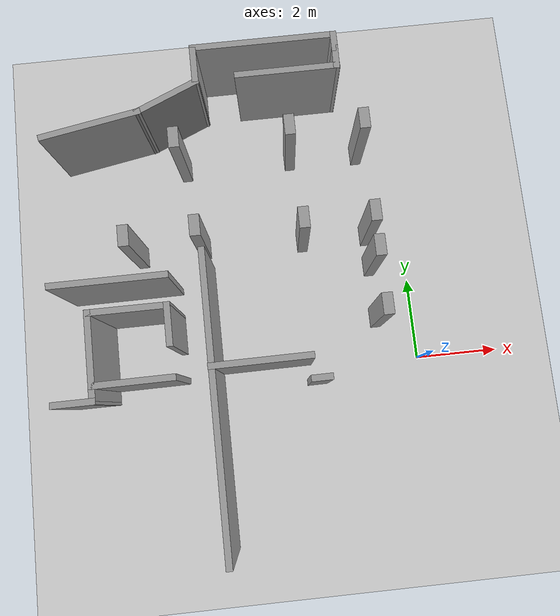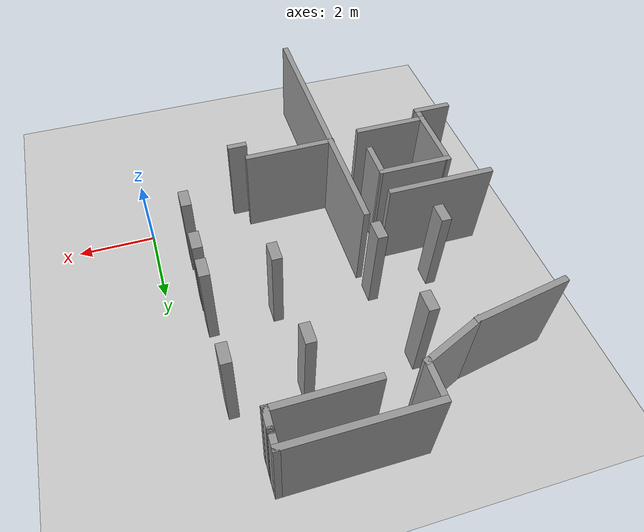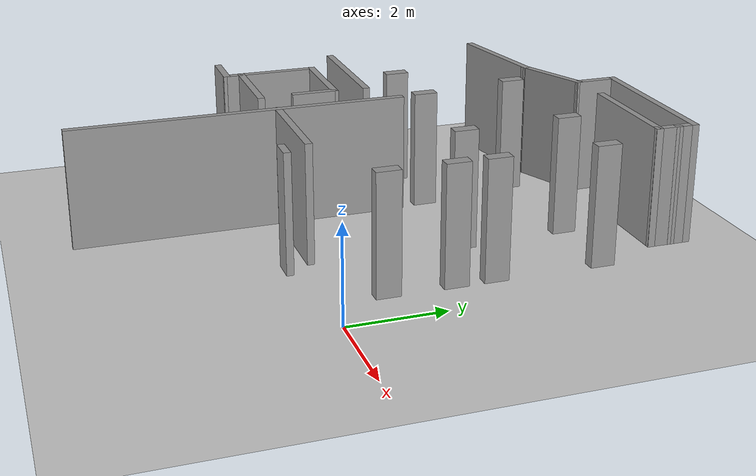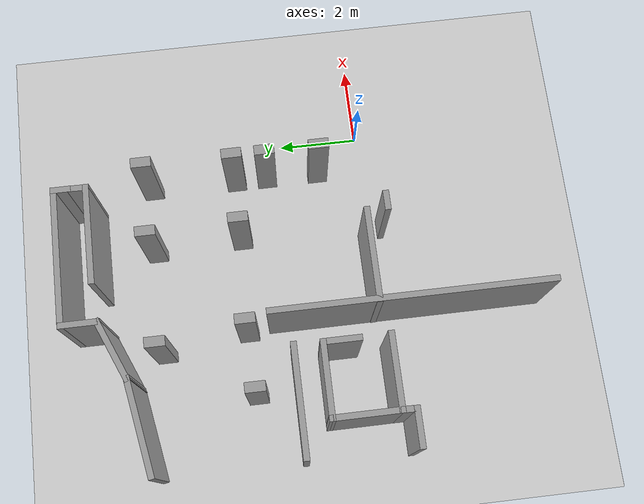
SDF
<sdf version="1.7">
 <world name="default">
  <model name="ground_plane">
   <static>1</static>
   <link name="link">
    <collision name="collision">
     <geometry><plane><normal>0 0 1</normal><size>100 100</size></plane></geometry>
     <surface><friction><ode><mu>100</mu><mu2>50</mu2></ode></friction></surface>
    </collision>
    <visual name="visual">
     <cast_shadows>0</cast_shadows>
     <geometry><plane><normal>0 0 1</normal><size>100 100</size></plane></geometry>
     <material>
      <script><uri>file://media/materials/scripts/gazebo.material</uri><name>Gazebo/Grey</name></script>
     </material>
    </visual>
   </link>
  </model>
  <model name="Level1">
   <link name="Wall_147">
    <pose>-2.69684 5.52459 0 0 -0 1.5708</pose>
    <visual name="Wall_147_Visual">
     <pose>0 0 1.25 0 -0 0</pose>
     <geometry><box><size>0.5 0.25 2.5</size></box></geometry>
     <material>
      <script><uri>file://media/materials/scripts/gazebo.material</uri><name>Gazebo/Grey</name></script>
      <ambient>1 1 1 1</ambient>
      <shader type="pixel"/>
     </material>
     <meta><layer>0</layer></meta>
    </visual>
    <collision name="Wall_147_Collision">
     <pose>0 0 1.25 0 -0 0</pose>
     <geometry><box><size>0.5 0.25 2.5</size></box></geometry>
     <surface>
      <friction>
       <ode><mu>1</mu><mu2>1</mu2><fdir1>0 0 0</fdir1><slip1>0</slip1><slip2>0</slip2></ode>
       <torsional>
        <coefficient>1</coefficient>
        <patch_radius>0</patch_radius>
        <surface_radius>0</surface_radius>
        <use_patch_radius>1</use_patch_radius>
        <ode><slip>0</slip></ode>
       </torsional>
      </friction>
      <bounce><restitution_coefficient>0</restitution_coefficient><threshold>1e+06</threshold></bounce>
      <contact>
       <collide_without_contact>0</collide_without_contact>
       <collide_without_contact_bitmask>1</collide_without_contact_bitmask>
       <collide_bitmask>1</collide_bitmask>
       <ode>
        <soft_cfm>0</soft_cfm>
        <soft_erp>0.2</soft_erp>
        <kp>1e+13</kp>
        <kd>1</kd>
        <max_vel>0.01</max_vel>
        <min_depth>0</min_depth>
       </ode>
       <bullet>
        <split_impulse>1</split_impulse>
        <split_impulse_penetration_threshold>-0.01</split_impulse_penetration_threshold>
        <soft_cfm>0</soft_cfm>
        <soft_erp>0.2</soft_erp>
        <kp>1e+13</kp>
        <kd>1</kd>
       </bullet>
      </contact>
     </surface>
    </collision>
   </link>
   <link name="Wall_147_clone">
    <pose>-0.945685 5.50103 0 0 -0 1.5708</pose>
    <visual name="Wall_147_Visual">
     <pose>0 0 1.25 0 -0 0</pose>
     <geometry><box><size>0.5 0.25 2.5</size></box></geometry>
     <material>
      <script><uri>file://media/materials/scripts/gazebo.material</uri><name>Gazebo/Grey</name></script>
      <ambient>1 1 1 1</ambient>
      <shader type="pixel"/>
     </material>
     <meta><layer>0</layer></meta>
    </visual>
    <collision name="Wall_147_Collision">
     <pose>0 0 1.25 0 -0 0</pose>
     <geometry><box><size>0.5 0.25 2.5</size></box></geometry>
     <surface>
      <friction>
       <ode><mu>1</mu><mu2>1</mu2><fdir1>0 0 0</fdir1><slip1>0</slip1><slip2>0</slip2></ode>
       <torsional>
        <coefficient>1</coefficient>
        <patch_radius>0</patch_radius>
        <surface_radius>0</surface_radius>
        <use_patch_radius>1</use_patch_radius>
        <ode><slip>0</slip></ode>
       </torsional>
      </friction>
      <bounce><restitution_coefficient>0</restitution_coefficient><threshold>1e+06</threshold></bounce>
      <contact>
       <collide_without_contact>0</collide_without_contact>
       <collide_without_contact_bitmask>1</collide_without_contact_bitmask>
       <collide_bitmask>1</collide_bitmask>
       <ode>
        <soft_cfm>0</soft_cfm>
        <soft_erp>0.2</soft_erp>
        <kp>1e+13</kp>
        <kd>1</kd>
        <max_vel>0.01</max_vel>
        <min_depth>0</min_depth>
       </ode>
       <bullet>
        <split_impulse>1</split_impulse>
        <split_impulse_penetration_threshold>-0.01</split_impulse_penetration_threshold>
        <soft_cfm>0</soft_cfm>
        <soft_erp>0.2</soft_erp>
        <kp>1e+13</kp>
        <kd>1</kd>
       </bullet>
      </contact>
     </surface>
    </collision>
   </link>
   <link name="Wall_147_clone_clone_1">
    <pose>-2.60288 3.28042 0 0 -0 1.5708</pose>
    <visual name="Wall_147_Visual">
     <pose>0 0 1.25 0 -0 0</pose>
     <geometry><box><size>0.5 0.25 2.5</size></box></geometry>
     <material>
      <script><uri>file://media/materials/scripts/gazebo.material</uri><name>Gazebo/Grey</name></script>
      <ambient>1 1 1 1</ambient>
      <shader type="pixel"/>
     </material>
     <meta><layer>0</layer></meta>
    </visual>
    <collision name="Wall_147_Collision">
     <pose>0 0 1.25 0 -0 0</pose>
     <geometry><box><size>0.5 0.25 2.5</size></box></geometry>
     <surface>
      <friction>
       <ode><mu>1</mu><mu2>1</mu2><fdir1>0 0 0</fdir1><slip1>0</slip1><slip2>0</slip2></ode>
       <torsional>
        <coefficient>1</coefficient>
        <patch_radius>0</patch_radius>
        <surface_radius>0</surface_radius>
        <use_patch_radius>1</use_patch_radius>
        <ode><slip>0</slip></ode>
       </torsional>
      </friction>
      <bounce><restitution_coefficient>0</restitution_coefficient><threshold>1e+06</threshold></bounce>
      <contact>
       <collide_without_contact>0</collide_without_contact>
       <collide_without_contact_bitmask>1</collide_without_contact_bitmask>
       <collide_bitmask>1</collide_bitmask>
       <ode>
        <soft_cfm>0</soft_cfm>
        <soft_erp>0.2</soft_erp>
        <kp>1e+13</kp>
        <kd>1</kd>
        <max_vel>0.01</max_vel>
        <min_depth>0</min_depth>
       </ode>
       <bullet>
        <split_impulse>1</split_impulse>
        <split_impulse_penetration_threshold>-0.01</split_impulse_penetration_threshold>
        <soft_cfm>0</soft_cfm>
        <soft_erp>0.2</soft_erp>
        <kp>1e+13</kp>
        <kd>1</kd>
       </bullet>
      </contact>
     </surface>
    </collision>
   </link>
   <link name="Wall_147_clone_clone_12">
    <pose>-5.406 5.49643 0 0 -0 1.5708</pose>
    <visual name="Wall_147_Visual">
     <pose>0 0 1.25 0 -0 0</pose>
     <geometry><box><size>0.5 0.25 2.5</size></box></geometry>
     <material>
      <script><uri>file://media/materials/scripts/gazebo.material</uri><name>Gazebo/Grey</name></script>
      <ambient>1 1 1 1</ambient>
      <shader type="pixel"/>
     </material>
     <meta><layer>0</layer></meta>
    </visual>
    <collision name="Wall_147_Collision">
     <pose>0 0 1.25 0 -0 0</pose>
     <geometry><box><size>0.5 0.25 2.5</size></box></geometry>
     <surface>
      <friction>
       <ode><mu>1</mu><mu2>1</mu2><fdir1>0 0 0</fdir1><slip1>0</slip1><slip2>0</slip2></ode>
       <torsional>
        <coefficient>1</coefficient>
        <patch_radius>0</patch_radius>
        <surface_radius>0</surface_radius>
        <use_patch_radius>1</use_patch_radius>
        <ode><slip>0</slip></ode>
       </torsional>
      </friction>
      <bounce><restitution_coefficient>0</restitution_coefficient><threshold>1e+06</threshold></bounce>
      <contact>
       <collide_without_contact>0</collide_without_contact>
       <collide_without_contact_bitmask>1</collide_without_contact_bitmask>
       <collide_bitmask>1</collide_bitmask>
       <ode>
        <soft_cfm>0</soft_cfm>
        <soft_erp>0.2</soft_erp>
        <kp>1e+13</kp>
        <kd>1</kd>
        <max_vel>0.01</max_vel>
        <min_depth>0</min_depth>
       </ode>
       <bullet>
        <split_impulse>1</split_impulse>
        <split_impulse_penetration_threshold>-0.01</split_impulse_penetration_threshold>
        <soft_cfm>0</soft_cfm>
        <soft_erp>0.2</soft_erp>
        <kp>1e+13</kp>
        <kd>1</kd>
       </bullet>
      </contact>
     </surface>
    </collision>
   </link>
   <link name="Wall_147_clone_clone_13">
    <pose>-5.09429 3.3571 0 0 -0 1.5708</pose>
    <visual name="Wall_147_Visual">
     <pose>0 0 1.25 0 -0 0</pose>
     <geometry><box><size>0.5 0.25 2.5</size></box></geometry>
     <material>
      <script><uri>file://media/materials/scripts/gazebo.material</uri><name>Gazebo/Grey</name></script>
      <ambient>1 1 1 1</ambient>
      <shader type="pixel"/>
     </material>
     <meta><layer>0</layer></meta>
    </visual>
    <collision name="Wall_147_Collision">
     <pose>0 0 1.25 0 -0 0</pose>
     <geometry><box><size>0.5 0.25 2.5</size></box></geometry>
     <surface>
      <friction>
       <ode><mu>1</mu><mu2>1</mu2><fdir1>0 0 0</fdir1><slip1>0</slip1><slip2>0</slip2></ode>
       <torsional>
        <coefficient>1</coefficient>
        <patch_radius>0</patch_radius>
        <surface_radius>0</surface_radius>
        <use_patch_radius>1</use_patch_radius>
        <ode><slip>0</slip></ode>
       </torsional>
      </friction>
      <bounce><restitution_coefficient>0</restitution_coefficient><threshold>1e+06</threshold></bounce>
      <contact>
       <collide_without_contact>0</collide_without_contact>
       <collide_without_contact_bitmask>1</collide_without_contact_bitmask>
       <collide_bitmask>1</collide_bitmask>
       <ode>
        <soft_cfm>0</soft_cfm>
        <soft_erp>0.2</soft_erp>
        <kp>1e+13</kp>
        <kd>1</kd>
        <max_vel>0.01</max_vel>
        <min_depth>0</min_depth>
       </ode>
       <bullet>
        <split_impulse>1</split_impulse>
        <split_impulse_penetration_threshold>-0.01</split_impulse_penetration_threshold>
        <soft_cfm>0</soft_cfm>
        <soft_erp>0.2</soft_erp>
        <kp>1e+13</kp>
        <kd>1</kd>
       </bullet>
      </contact>
     </surface>
    </collision>
   </link>
   <link name="Wall_147_clone_clone_14">
    <pose>-6.71885 3.28042 0 0 -0 1.5708</pose>
    <visual name="Wall_147_Visual">
     <pose>0 0 1.25 0 -0 0</pose>
     <geometry><box><size>0.5 0.25 2.5</size></box></geometry>
     <material>
      <script><uri>file://media/materials/scripts/gazebo.material</uri><name>Gazebo/Grey</name></script>
      <ambient>1 1 1 1</ambient>
      <shader type="pixel"/>
     </material>
     <meta><layer>0</layer></meta>
    </visual>
    <collision name="Wall_147_Collision">
     <pose>0 0 1.25 0 -0 0</pose>
     <geometry><box><size>0.5 0.25 2.5</size></box></geometry>
     <surface>
      <friction>
       <ode><mu>1</mu><mu2>1</mu2><fdir1>0 0 0</fdir1><slip1>0</slip1><slip2>0</slip2></ode>
       <torsional>
        <coefficient>1</coefficient>
        <patch_radius>0</patch_radius>
        <surface_radius>0</surface_radius>
        <use_patch_radius>1</use_patch_radius>
        <ode><slip>0</slip></ode>
       </torsional>
      </friction>
      <bounce><restitution_coefficient>0</restitution_coefficient><threshold>1e+06</threshold></bounce>
      <contact>
       <collide_without_contact>0</collide_without_contact>
       <collide_without_contact_bitmask>1</collide_without_contact_bitmask>
       <collide_bitmask>1</collide_bitmask>
       <ode>
        <soft_cfm>0</soft_cfm>
        <soft_erp>0.2</soft_erp>
        <kp>1e+13</kp>
        <kd>1</kd>
        <max_vel>0.01</max_vel>
        <min_depth>0</min_depth>
       </ode>
       <bullet>
        <split_impulse>1</split_impulse>
        <split_impulse_penetration_threshold>-0.01</split_impulse_penetration_threshold>
        <soft_cfm>0</soft_cfm>
        <soft_erp>0.2</soft_erp>
        <kp>1e+13</kp>
        <kd>1</kd>
       </bullet>
      </contact>
     </surface>
    </collision>
   </link>
   <link name="Wall_147_clone_clone_2">
    <pose>-0.958529 3.28042 0 0 -0 1.5708</pose>
    <visual name="Wall_147_Visual">
     <pose>0 0 1.25 0 -0 0</pose>
     <geometry><box><size>0.5 0.25 2.5</size></box></geometry>
     <material>
      <script><uri>file://media/materials/scripts/gazebo.material</uri><name>Gazebo/Grey</name></script>
      <ambient>1 1 1 1</ambient>
      <shader type="pixel"/>
     </material>
     <meta><layer>0</layer></meta>
    </visual>
    <collision name="Wall_147_Collision">
     <pose>0 0 1.25 0 -0 0</pose>
     <geometry><box><size>0.5 0.25 2.5</size></box></geometry>
     <surface>
      <friction>
       <ode><mu>1</mu><mu2>1</mu2><fdir1>0 0 0</fdir1><slip1>0</slip1><slip2>0</slip2></ode>
       <torsional>
        <coefficient>1</coefficient>
        <patch_radius>0</patch_radius>
        <surface_radius>0</surface_radius>
        <use_patch_radius>1</use_patch_radius>
        <ode><slip>0</slip></ode>
       </torsional>
      </friction>
      <bounce><restitution_coefficient>0</restitution_coefficient><threshold>1e+06</threshold></bounce>
      <contact>
       <collide_without_contact>0</collide_without_contact>
       <collide_without_contact_bitmask>1</collide_without_contact_bitmask>
       <collide_bitmask>1</collide_bitmask>
       <ode>
        <soft_cfm>0</soft_cfm>
        <soft_erp>0.2</soft_erp>
        <kp>1e+13</kp>
        <kd>1</kd>
        <max_vel>0.01</max_vel>
        <min_depth>0</min_depth>
       </ode>
       <bullet>
        <split_impulse>1</split_impulse>
        <split_impulse_penetration_threshold>-0.01</split_impulse_penetration_threshold>
        <soft_cfm>0</soft_cfm>
        <soft_erp>0.2</soft_erp>
        <kp>1e+13</kp>
        <kd>1</kd>
       </bullet>
      </contact>
     </surface>
    </collision>
   </link>
   <link name="Wall_147_clone_clone_5">
    <pose>-0.958529 2.4674 0 0 -0 1.5708</pose>
    <visual name="Wall_147_Visual">
     <pose>0 0 1.25 0 -0 0</pose>
     <geometry><box><size>0.5 0.25 2.5</size></box></geometry>
     <material>
      <script><uri>file://media/materials/scripts/gazebo.material</uri><name>Gazebo/Grey</name></script>
      <ambient>1 1 1 1</ambient>
      <shader type="pixel"/>
     </material>
     <meta><layer>0</layer></meta>
    </visual>
    <collision name="Wall_147_Collision">
     <pose>0 0 1.25 0 -0 0</pose>
     <geometry><box><size>0.5 0.25 2.5</size></box></geometry>
     <surface>
      <friction>
       <ode><mu>1</mu><mu2>1</mu2><fdir1>0 0 0</fdir1><slip1>0</slip1><slip2>0</slip2></ode>
       <torsional>
        <coefficient>1</coefficient>
        <patch_radius>0</patch_radius>
        <surface_radius>0</surface_radius>
        <use_patch_radius>1</use_patch_radius>
        <ode><slip>0</slip></ode>
       </torsional>
      </friction>
      <bounce><restitution_coefficient>0</restitution_coefficient><threshold>1e+06</threshold></bounce>
      <contact>
       <collide_without_contact>0</collide_without_contact>
       <collide_without_contact_bitmask>1</collide_without_contact_bitmask>
       <collide_bitmask>1</collide_bitmask>
       <ode>
        <soft_cfm>0</soft_cfm>
        <soft_erp>0.2</soft_erp>
        <kp>1e+13</kp>
        <kd>1</kd>
        <max_vel>0.01</max_vel>
        <min_depth>0</min_depth>
       </ode>
       <bullet>
        <split_impulse>1</split_impulse>
        <split_impulse_penetration_threshold>-0.01</split_impulse_penetration_threshold>
        <soft_cfm>0</soft_cfm>
        <soft_erp>0.2</soft_erp>
        <kp>1e+13</kp>
        <kd>1</kd>
       </bullet>
      </contact>
     </surface>
    </collision>
   </link>
   <link name="Wall_147_clone_clone_8">
    <pose>-0.958529 1.12043 0 0 -0 1.5708</pose>
    <visual name="Wall_147_Visual">
     <pose>0 0 1.25 0 -0 0</pose>
     <geometry><box><size>0.5 0.25 2.5</size></box></geometry>
     <material>
      <script><uri>file://media/materials/scripts/gazebo.material</uri><name>Gazebo/Grey</name></script>
      <ambient>1 1 1 1</ambient>
      <shader type="pixel"/>
     </material>
     <meta><layer>0</layer></meta>
    </visual>
    <collision name="Wall_147_Collision">
     <pose>0 0 1.25 0 -0 0</pose>
     <geometry><box><size>0.5 0.25 2.5</size></box></geometry>
     <surface>
      <friction>
       <ode><mu>1</mu><mu2>1</mu2><fdir1>0 0 0</fdir1><slip1>0</slip1><slip2>0</slip2></ode>
       <torsional>
        <coefficient>1</coefficient>
        <patch_radius>0</patch_radius>
        <surface_radius>0</surface_radius>
        <use_patch_radius>1</use_patch_radius>
        <ode><slip>0</slip></ode>
       </torsional>
      </friction>
      <bounce><restitution_coefficient>0</restitution_coefficient><threshold>1e+06</threshold></bounce>
      <contact>
       <collide_without_contact>0</collide_without_contact>
       <collide_without_contact_bitmask>1</collide_without_contact_bitmask>
       <collide_bitmask>1</collide_bitmask>
       <ode>
        <soft_cfm>0</soft_cfm>
        <soft_erp>0.2</soft_erp>
        <kp>1e+13</kp>
        <kd>1</kd>
        <max_vel>0.01</max_vel>
        <min_depth>0</min_depth>
       </ode>
       <bullet>
        <split_impulse>1</split_impulse>
        <split_impulse_penetration_threshold>-0.01</split_impulse_penetration_threshold>
        <soft_cfm>0</soft_cfm>
        <soft_erp>0.2</soft_erp>
        <kp>1e+13</kp>
        <kd>1</kd>
       </bullet>
      </contact>
     </surface>
    </collision>
   </link>
   <link name="Wall_16">
    <pose>-1.43052 7.47884 0 0 -0 1.5708</pose>
    <visual name="Wall_16_Visual">
     <pose>0 0 1.25 0 -0 0</pose>
     <geometry><box><size>0.5 0.15 2.5</size></box></geometry>
     <material>
      <script><uri>file://media/materials/scripts/gazebo.material</uri><name>Gazebo/Grey</name></script>
      <ambient>1 1 1 1</ambient>
      <shader type="pixel"/>
     </material>
     <meta><layer>0</layer></meta>
    </visual>
    <collision name="Wall_16_Collision">
     <pose>0 0 1.25 0 -0 0</pose>
     <geometry><box><size>0.5 0.15 2.5</size></box></geometry>
     <surface>
      <friction>
       <ode><mu>1</mu><mu2>1</mu2><fdir1>0 0 0</fdir1><slip1>0</slip1><slip2>0</slip2></ode>
       <torsional>
        <coefficient>1</coefficient>
        <patch_radius>0</patch_radius>
        <surface_radius>0</surface_radius>
        <use_patch_radius>1</use_patch_radius>
        <ode><slip>0</slip></ode>
       </torsional>
      </friction>
      <bounce><restitution_coefficient>0</restitution_coefficient><threshold>1e+06</threshold></bounce>
      <contact>
       <collide_without_contact>0</collide_without_contact>
       <collide_without_contact_bitmask>1</collide_without_contact_bitmask>
       <collide_bitmask>1</collide_bitmask>
       <ode>
        <soft_cfm>0</soft_cfm>
        <soft_erp>0.2</soft_erp>
        <kp>1e+13</kp>
        <kd>1</kd>
        <max_vel>0.01</max_vel>
        <min_depth>0</min_depth>
       </ode>
       <bullet>
        <split_impulse>1</split_impulse>
        <split_impulse_penetration_threshold>-0.01</split_impulse_penetration_threshold>
        <soft_cfm>0</soft_cfm>
        <soft_erp>0.2</soft_erp>
        <kp>1e+13</kp>
        <kd>1</kd>
       </bullet>
      </contact>
     </surface>
    </collision>
   </link>
   <link name="Wall_18">
    <pose>-3.10552 7.65384 0 0 -0 3.14159</pose>
    <visual name="Wall_18_Visual">
     <pose>0 0 1.25 0 -0 0</pose>
     <geometry><box><size>3.5 0.15 2.5</size></box></geometry>
     <material>
      <script><uri>file://media/materials/scripts/gazebo.material</uri><name>Gazebo/Grey</name></script>
      <ambient>1 1 1 1</ambient>
      <shader type="pixel"/>
     </material>
     <meta><layer>0</layer></meta>
    </visual>
    <collision name="Wall_18_Collision">
     <pose>0 0 1.25 0 -0 0</pose>
     <geometry><box><size>3.5 0.15 2.5</size></box></geometry>
     <surface>
      <friction>
       <ode><mu>1</mu><mu2>1</mu2><fdir1>0 0 0</fdir1><slip1>0</slip1><slip2>0</slip2></ode>
       <torsional>
        <coefficient>1</coefficient>
        <patch_radius>0</patch_radius>
        <surface_radius>0</surface_radius>
        <use_patch_radius>1</use_patch_radius>
        <ode><slip>0</slip></ode>
       </torsional>
      </friction>
      <bounce><restitution_coefficient>0</restitution_coefficient><threshold>1e+06</threshold></bounce>
      <contact>
       <collide_without_contact>0</collide_without_contact>
       <collide_without_contact_bitmask>1</collide_without_contact_bitmask>
       <collide_bitmask>1</collide_bitmask>
       <ode>
        <soft_cfm>0</soft_cfm>
        <soft_erp>0.2</soft_erp>
        <kp>1e+13</kp>
        <kd>1</kd>
        <max_vel>0.01</max_vel>
        <min_depth>0</min_depth>
       </ode>
       <bullet>
        <split_impulse>1</split_impulse>
        <split_impulse_penetration_threshold>-0.01</split_impulse_penetration_threshold>
        <soft_cfm>0</soft_cfm>
        <soft_erp>0.2</soft_erp>
        <kp>1e+13</kp>
        <kd>1</kd>
       </bullet>
      </contact>
     </surface>
    </collision>
   </link>
   <link name="Wall_19">
    <pose>-4.78052 7.22884 0 0 0 -1.5708</pose>
    <visual name="Wall_19_Visual">
     <pose>0 0 1.25 0 -0 0</pose>
     <geometry><box><size>1 0.15 2.5</size></box></geometry>
     <material>
      <script><uri>file://media/materials/scripts/gazebo.material</uri><name>Gazebo/Grey</name></script>
      <ambient>1 1 1 1</ambient>
      <shader type="pixel"/>
     </material>
     <meta><layer>0</layer></meta>
    </visual>
    <collision name="Wall_19_Collision">
     <pose>0 0 1.25 0 -0 0</pose>
     <geometry><box><size>1 0.15 2.5</size></box></geometry>
     <surface>
      <friction>
       <ode><mu>1</mu><mu2>1</mu2><fdir1>0 0 0</fdir1><slip1>0</slip1><slip2>0</slip2></ode>
       <torsional>
        <coefficient>1</coefficient>
        <patch_radius>0</patch_radius>
        <surface_radius>0</surface_radius>
        <use_patch_radius>1</use_patch_radius>
        <ode><slip>0</slip></ode>
       </torsional>
      </friction>
      <bounce><restitution_coefficient>0</restitution_coefficient><threshold>1e+06</threshold></bounce>
      <contact>
       <collide_without_contact>0</collide_without_contact>
       <collide_without_contact_bitmask>1</collide_without_contact_bitmask>
       <collide_bitmask>1</collide_bitmask>
       <ode>
        <soft_cfm>0</soft_cfm>
        <soft_erp>0.2</soft_erp>
        <kp>1e+13</kp>
        <kd>1</kd>
        <max_vel>0.01</max_vel>
        <min_depth>0</min_depth>
       </ode>
       <bullet>
        <split_impulse>1</split_impulse>
        <split_impulse_penetration_threshold>-0.01</split_impulse_penetration_threshold>
        <soft_cfm>0</soft_cfm>
        <soft_erp>0.2</soft_erp>
        <kp>1e+13</kp>
        <kd>1</kd>
       </bullet>
      </contact>
     </surface>
    </collision>
   </link>
   <link name="Wall_22">
    <pose>-5.48364 6.50298 0 0 0 -2.73728</pose>
    <visual name="Wall_22_Visual">
     <pose>0 0 1.25 0 -0 0</pose>
     <geometry><box><size>1.67957 0.15 2.5</size></box></geometry>
     <material>
      <script><uri>file://media/materials/scripts/gazebo.material</uri><name>Gazebo/Grey</name></script>
      <ambient>1 1 1 1</ambient>
      <shader type="pixel"/>
     </material>
     <meta><layer>0</layer></meta>
    </visual>
    <collision name="Wall_22_Collision">
     <pose>0 0 1.25 0 -0 0</pose>
     <geometry><box><size>1.67957 0.15 2.5</size></box></geometry>
     <surface>
      <friction>
       <ode><mu>1</mu><mu2>1</mu2><fdir1>0 0 0</fdir1><slip1>0</slip1><slip2>0</slip2></ode>
       <torsional>
        <coefficient>1</coefficient>
        <patch_radius>0</patch_radius>
        <surface_radius>0</surface_radius>
        <use_patch_radius>1</use_patch_radius>
        <ode><slip>0</slip></ode>
       </torsional>
      </friction>
      <bounce><restitution_coefficient>0</restitution_coefficient><threshold>1e+06</threshold></bounce>
      <contact>
       <collide_without_contact>0</collide_without_contact>
       <collide_without_contact_bitmask>1</collide_without_contact_bitmask>
       <collide_bitmask>1</collide_bitmask>
       <ode>
        <soft_cfm>0</soft_cfm>
        <soft_erp>0.2</soft_erp>
        <kp>1e+13</kp>
        <kd>1</kd>
        <max_vel>0.01</max_vel>
        <min_depth>0</min_depth>
       </ode>
       <bullet>
        <split_impulse>1</split_impulse>
        <split_impulse_penetration_threshold>-0.01</split_impulse_penetration_threshold>
        <soft_cfm>0</soft_cfm>
        <soft_erp>0.2</soft_erp>
        <kp>1e+13</kp>
        <kd>1</kd>
       </bullet>
      </contact>
     </surface>
    </collision>
   </link>
   <link name="Wall_23">
    <pose>-7.31457 6.00271 0 0 0 -2.96659</pose>
    <visual name="Wall_23_Visual">
     <pose>0 0 1.25 0 -0 0</pose>
     <geometry><box><size>2.44061 0.15 2.5</size></box></geometry>
     <material>
      <script><uri>file://media/materials/scripts/gazebo.material</uri><name>Gazebo/Grey</name></script>
      <ambient>1 1 1 1</ambient>
      <shader type="pixel"/>
     </material>
     <meta><layer>0</layer></meta>
    </visual>
    <collision name="Wall_23_Collision">
     <pose>0 0 1.25 0 -0 0</pose>
     <geometry><box><size>2.44061 0.15 2.5</size></box></geometry>
     <surface>
      <friction>
       <ode><mu>1</mu><mu2>1</mu2><fdir1>0 0 0</fdir1><slip1>0</slip1><slip2>0</slip2></ode>
       <torsional>
        <coefficient>1</coefficient>
        <patch_radius>0</patch_radius>
        <surface_radius>0</surface_radius>
        <use_patch_radius>1</use_patch_radius>
        <ode><slip>0</slip></ode>
       </torsional>
      </friction>
      <bounce><restitution_coefficient>0</restitution_coefficient><threshold>1e+06</threshold></bounce>
      <contact>
       <collide_without_contact>0</collide_without_contact>
       <collide_without_contact_bitmask>1</collide_without_contact_bitmask>
       <collide_bitmask>1</collide_bitmask>
       <ode>
        <soft_cfm>0</soft_cfm>
        <soft_erp>0.2</soft_erp>
        <kp>1e+13</kp>
        <kd>1</kd>
        <max_vel>0.01</max_vel>
        <min_depth>0</min_depth>
       </ode>
       <bullet>
        <split_impulse>1</split_impulse>
        <split_impulse_penetration_threshold>-0.01</split_impulse_penetration_threshold>
        <soft_cfm>0</soft_cfm>
        <soft_erp>0.2</soft_erp>
        <kp>1e+13</kp>
        <kd>1</kd>
       </bullet>
      </contact>
     </surface>
    </collision>
   </link>
   <link name="Wall_27">
    <pose>-1.43499 7.08673 0 0 0 -1.59138</pose>
    <visual name="Wall_27_Visual">
     <pose>0 0 1.25 0 -0 0</pose>
     <geometry><box><size>0.584656 0.15 2.5</size></box></geometry>
     <material>
      <script><uri>file://media/materials/scripts/gazebo.material</uri><name>Gazebo/Grey</name></script>
      <ambient>1 1 1 1</ambient>
      <shader type="pixel"/>
     </material>
     <meta><layer>0</layer></meta>
    </visual>
    <collision name="Wall_27_Collision">
     <pose>0 0 1.25 0 -0 0</pose>
     <geometry><box><size>0.584656 0.15 2.5</size></box></geometry>
     <surface>
      <friction>
       <ode><mu>1</mu><mu2>1</mu2><fdir1>0 0 0</fdir1><slip1>0</slip1><slip2>0</slip2></ode>
       <torsional>
        <coefficient>1</coefficient>
        <patch_radius>0</patch_radius>
        <surface_radius>0</surface_radius>
        <use_patch_radius>1</use_patch_radius>
        <ode><slip>0</slip></ode>
       </torsional>
      </friction>
      <bounce><restitution_coefficient>0</restitution_coefficient><threshold>1e+06</threshold></bounce>
      <contact>
       <collide_without_contact>0</collide_without_contact>
       <collide_without_contact_bitmask>1</collide_without_contact_bitmask>
       <collide_bitmask>1</collide_bitmask>
       <ode>
        <soft_cfm>0</soft_cfm>
        <soft_erp>0.2</soft_erp>
        <kp>1e+13</kp>
        <kd>1</kd>
        <max_vel>0.01</max_vel>
        <min_depth>0</min_depth>
       </ode>
       <bullet>
        <split_impulse>1</split_impulse>
        <split_impulse_penetration_threshold>-0.01</split_impulse_penetration_threshold>
        <soft_cfm>0</soft_cfm>
        <soft_erp>0.2</soft_erp>
        <kp>1e+13</kp>
        <kd>1</kd>
       </bullet>
      </contact>
     </surface>
    </collision>
   </link>
   <link name="Wall_28">
    <pose>-2.60877 6.86962 0 0 -0 3.14159</pose>
    <visual name="Wall_28_Visual">
     <pose>0 0 1.25 0 -0 0</pose>
     <geometry><box><size>2.5 0.15 2.5</size></box></geometry>
     <material>
      <script><uri>file://media/materials/scripts/gazebo.material</uri><name>Gazebo/Grey</name></script>
      <ambient>1 1 1 1</ambient>
      <shader type="pixel"/>
     </material>
     <meta><layer>0</layer></meta>
    </visual>
    <collision name="Wall_28_Collision">
     <pose>0 0 1.25 0 -0 0</pose>
     <geometry><box><size>2.5 0.15 2.5</size></box></geometry>
     <surface>
      <friction>
       <ode><mu>1</mu><mu2>1</mu2><fdir1>0 0 0</fdir1><slip1>0</slip1><slip2>0</slip2></ode>
       <torsional>
        <coefficient>1</coefficient>
        <patch_radius>0</patch_radius>
        <surface_radius>0</surface_radius>
        <use_patch_radius>1</use_patch_radius>
        <ode><slip>0</slip></ode>
       </torsional>
      </friction>
      <bounce><restitution_coefficient>0</restitution_coefficient><threshold>1e+06</threshold></bounce>
      <contact>
       <collide_without_contact>0</collide_without_contact>
       <collide_without_contact_bitmask>1</collide_without_contact_bitmask>
       <collide_bitmask>1</collide_bitmask>
       <ode>
        <soft_cfm>0</soft_cfm>
        <soft_erp>0.2</soft_erp>
        <kp>1e+13</kp>
        <kd>1</kd>
        <max_vel>0.01</max_vel>
        <min_depth>0</min_depth>
       </ode>
       <bullet>
        <split_impulse>1</split_impulse>
        <split_impulse_penetration_threshold>-0.01</split_impulse_penetration_threshold>
        <soft_cfm>0</soft_cfm>
        <soft_erp>0.2</soft_erp>
        <kp>1e+13</kp>
        <kd>1</kd>
       </bullet>
      </contact>
     </surface>
    </collision>
   </link>
   <link name="Wall_54">
    <pose>-8.05865 -0.347225 0 0 -0 0</pose>
    <visual name="Wall_54_Visual">
     <pose>0 0 1.25 0 -0 0</pose>
     <geometry><box><size>1 0.15 2.5</size></box></geometry>
     <material>
      <script><uri>file://media/materials/scripts/gazebo.material</uri><name>Gazebo/Grey</name></script>
      <ambient>1 1 1 1</ambient>
      <shader type="pixel"/>
     </material>
     <meta><layer>0</layer></meta>
    </visual>
    <collision name="Wall_54_Collision">
     <pose>0 0 1.25 0 -0 0</pose>
     <geometry><box><size>1 0.15 2.5</size></box></geometry>
     <surface>
      <friction>
       <ode><mu>1</mu><mu2>1</mu2><fdir1>0 0 0</fdir1><slip1>0</slip1><slip2>0</slip2></ode>
       <torsional>
        <coefficient>1</coefficient>
        <patch_radius>0</patch_radius>
        <surface_radius>0</surface_radius>
        <use_patch_radius>1</use_patch_radius>
        <ode><slip>0</slip></ode>
       </torsional>
      </friction>
      <bounce><restitution_coefficient>0</restitution_coefficient><threshold>1e+06</threshold></bounce>
      <contact>
       <collide_without_contact>0</collide_without_contact>
       <collide_without_contact_bitmask>1</collide_without_contact_bitmask>
       <collide_bitmask>1</collide_bitmask>
       <ode>
        <soft_cfm>0</soft_cfm>
        <soft_erp>0.2</soft_erp>
        <kp>1e+13</kp>
        <kd>1</kd>
        <max_vel>0.01</max_vel>
        <min_depth>0</min_depth>
       </ode>
       <bullet>
        <split_impulse>1</split_impulse>
        <split_impulse_penetration_threshold>-0.01</split_impulse_penetration_threshold>
        <soft_cfm>0</soft_cfm>
        <soft_erp>0.2</soft_erp>
        <kp>1e+13</kp>
        <kd>1</kd>
       </bullet>
      </contact>
     </surface>
    </collision>
   </link>
   <link name="Wall_55">
    <pose>-7.63125 -0.17982 0 0 -0 1.55643</pose>
    <visual name="Wall_55_Visual">
     <pose>0 0 1.25 0 -0 0</pose>
     <geometry><box><size>0.485253 0.15 2.5</size></box></geometry>
     <material>
      <script><uri>file://media/materials/scripts/gazebo.material</uri><name>Gazebo/Grey</name></script>
      <ambient>1 1 1 1</ambient>
      <shader type="pixel"/>
     </material>
     <meta><layer>0</layer></meta>
    </visual>
    <collision name="Wall_55_Collision">
     <pose>0 0 1.25 0 -0 0</pose>
     <geometry><box><size>0.485253 0.15 2.5</size></box></geometry>
     <surface>
      <friction>
       <ode><mu>1</mu><mu2>1</mu2><fdir1>0 0 0</fdir1><slip1>0</slip1><slip2>0</slip2></ode>
       <torsional>
        <coefficient>1</coefficient>
        <patch_radius>0</patch_radius>
        <surface_radius>0</surface_radius>
        <use_patch_radius>1</use_patch_radius>
        <ode><slip>0</slip></ode>
       </torsional>
      </friction>
      <bounce><restitution_coefficient>0</restitution_coefficient><threshold>1e+06</threshold></bounce>
      <contact>
       <collide_without_contact>0</collide_without_contact>
       <collide_without_contact_bitmask>1</collide_without_contact_bitmask>
       <collide_bitmask>1</collide_bitmask>
       <ode>
        <soft_cfm>0</soft_cfm>
        <soft_erp>0.2</soft_erp>
        <kp>1e+13</kp>
        <kd>1</kd>
        <max_vel>0.01</max_vel>
        <min_depth>0</min_depth>
       </ode>
       <bullet>
        <split_impulse>1</split_impulse>
        <split_impulse_penetration_threshold>-0.01</split_impulse_penetration_threshold>
        <soft_cfm>0</soft_cfm>
        <soft_erp>0.2</soft_erp>
        <kp>1e+13</kp>
        <kd>1</kd>
       </bullet>
      </contact>
     </surface>
    </collision>
   </link>
   <link name="Wall_57">
    <pose>-6.73885 -0.010013 0 0 -0 0.002698</pose>
    <visual name="Wall_57_Visual">
     <pose>0 0 1.25 0 -0 0</pose>
     <geometry><box><size>1.92999 0.15 2.5</size></box></geometry>
     <material>
      <script><uri>file://media/materials/scripts/gazebo.material</uri><name>Gazebo/Grey</name></script>
      <ambient>1 1 1 1</ambient>
      <shader type="pixel"/>
     </material>
     <meta><layer>0</layer></meta>
    </visual>
    <collision name="Wall_57_Collision">
     <pose>0 0 1.25 0 -0 0</pose>
     <geometry><box><size>1.92999 0.15 2.5</size></box></geometry>
     <surface>
      <friction>
       <ode><mu>1</mu><mu2>1</mu2><fdir1>0 0 0</fdir1><slip1>0</slip1><slip2>0</slip2></ode>
       <torsional>
        <coefficient>1</coefficient>
        <patch_radius>0</patch_radius>
        <surface_radius>0</surface_radius>
        <use_patch_radius>1</use_patch_radius>
        <ode><slip>0</slip></ode>
       </torsional>
      </friction>
      <bounce><restitution_coefficient>0</restitution_coefficient><threshold>1e+06</threshold></bounce>
      <contact>
       <collide_without_contact>0</collide_without_contact>
       <collide_without_contact_bitmask>1</collide_without_contact_bitmask>
       <collide_bitmask>1</collide_bitmask>
       <ode>
        <soft_cfm>0</soft_cfm>
        <soft_erp>0.2</soft_erp>
        <kp>1e+13</kp>
        <kd>1</kd>
        <max_vel>0.01</max_vel>
        <min_depth>0</min_depth>
       </ode>
       <bullet>
        <split_impulse>1</split_impulse>
        <split_impulse_penetration_threshold>-0.01</split_impulse_penetration_threshold>
        <soft_cfm>0</soft_cfm>
        <soft_erp>0.2</soft_erp>
        <kp>1e+13</kp>
        <kd>1</kd>
       </bullet>
      </contact>
     </surface>
    </collision>
   </link>
   <link name="Wall_59">
    <pose>-7.63125 0.79518 0 0 -0 1.57377</pose>
    <visual name="Wall_59_Visual">
     <pose>0 0 1.25 0 -0 0</pose>
     <geometry><box><size>1.76475 0.15 2.5</size></box></geometry>
     <material>
      <script><uri>file://media/materials/scripts/gazebo.material</uri><name>Gazebo/Grey</name></script>
      <ambient>1 1 1 1</ambient>
      <shader type="pixel"/>
     </material>
     <meta><layer>0</layer></meta>
    </visual>
    <collision name="Wall_59_Collision">
     <pose>0 0 1.25 0 -0 0</pose>
     <geometry><box><size>1.76475 0.15 2.5</size></box></geometry>
     <surface>
      <friction>
       <ode><mu>1</mu><mu2>1</mu2><fdir1>0 0 0</fdir1><slip1>0</slip1><slip2>0</slip2></ode>
       <torsional>
        <coefficient>1</coefficient>
        <patch_radius>0</patch_radius>
        <surface_radius>0</surface_radius>
        <use_patch_radius>1</use_patch_radius>
        <ode><slip>0</slip></ode>
       </torsional>
      </friction>
      <bounce><restitution_coefficient>0</restitution_coefficient><threshold>1e+06</threshold></bounce>
      <contact>
       <collide_without_contact>0</collide_without_contact>
       <collide_without_contact_bitmask>1</collide_without_contact_bitmask>
       <collide_bitmask>1</collide_bitmask>
       <ode>
        <soft_cfm>0</soft_cfm>
        <soft_erp>0.2</soft_erp>
        <kp>1e+13</kp>
        <kd>1</kd>
        <max_vel>0.01</max_vel>
        <min_depth>0</min_depth>
       </ode>
       <bullet>
        <split_impulse>1</split_impulse>
        <split_impulse_penetration_threshold>-0.01</split_impulse_penetration_threshold>
        <soft_cfm>0</soft_cfm>
        <soft_erp>0.2</soft_erp>
        <kp>1e+13</kp>
        <kd>1</kd>
       </bullet>
      </contact>
     </surface>
    </collision>
   </link>
   <link name="Wall_60">
    <pose>-6.74678 1.60059 0 0 0 -0.002465</pose>
    <visual name="Wall_60_Visual">
     <pose>0 0 1.25 0 -0 0</pose>
     <geometry><box><size>1.92376 0.15 2.5</size></box></geometry>
     <material>
      <script><uri>file://media/materials/scripts/gazebo.material</uri><name>Gazebo/Grey</name></script>
      <ambient>1 1 1 1</ambient>
      <shader type="pixel"/>
     </material>
     <meta><layer>0</layer></meta>
    </visual>
    <collision name="Wall_60_Collision">
     <pose>0 0 1.25 0 -0 0</pose>
     <geometry><box><size>1.92376 0.15 2.5</size></box></geometry>
     <surface>
      <friction>
       <ode><mu>1</mu><mu2>1</mu2><fdir1>0 0 0</fdir1><slip1>0</slip1><slip2>0</slip2></ode>
       <torsional>
        <coefficient>1</coefficient>
        <patch_radius>0</patch_radius>
        <surface_radius>0</surface_radius>
        <use_patch_radius>1</use_patch_radius>
        <ode><slip>0</slip></ode>
       </torsional>
      </friction>
      <bounce><restitution_coefficient>0</restitution_coefficient><threshold>1e+06</threshold></bounce>
      <contact>
       <collide_without_contact>0</collide_without_contact>
       <collide_without_contact_bitmask>1</collide_without_contact_bitmask>
       <collide_bitmask>1</collide_bitmask>
       <ode>
        <soft_cfm>0</soft_cfm>
        <soft_erp>0.2</soft_erp>
        <kp>1e+13</kp>
        <kd>1</kd>
        <max_vel>0.01</max_vel>
        <min_depth>0</min_depth>
       </ode>
       <bullet>
        <split_impulse>1</split_impulse>
        <split_impulse_penetration_threshold>-0.01</split_impulse_penetration_threshold>
        <soft_cfm>0</soft_cfm>
        <soft_erp>0.2</soft_erp>
        <kp>1e+13</kp>
        <kd>1</kd>
       </bullet>
      </contact>
     </surface>
    </collision>
   </link>
   <link name="Wall_61">
    <pose>-5.8599 1.1734 0 0 0 -1.5708</pose>
    <visual name="Wall_61_Visual">
     <pose>0 0 1.25 0 -0 0</pose>
     <geometry><box><size>1 0.15 2.5</size></box></geometry>
     <material>
      <script><uri>file://media/materials/scripts/gazebo.material</uri><name>Gazebo/Grey</name></script>
      <ambient>1 1 1 1</ambient>
      <shader type="pixel"/>
     </material>
     <meta><layer>0</layer></meta>
    </visual>
    <collision name="Wall_61_Collision">
     <pose>0 0 1.25 0 -0 0</pose>
     <geometry><box><size>1 0.15 2.5</size></box></geometry>
     <surface>
      <friction>
       <ode><mu>1</mu><mu2>1</mu2><fdir1>0 0 0</fdir1><slip1>0</slip1><slip2>0</slip2></ode>
       <torsional>
        <coefficient>1</coefficient>
        <patch_radius>0</patch_radius>
        <surface_radius>0</surface_radius>
        <use_patch_radius>1</use_patch_radius>
        <ode><slip>0</slip></ode>
       </torsional>
      </friction>
      <bounce><restitution_coefficient>0</restitution_coefficient><threshold>1e+06</threshold></bounce>
      <contact>
       <collide_without_contact>0</collide_without_contact>
       <collide_without_contact_bitmask>1</collide_without_contact_bitmask>
       <collide_bitmask>1</collide_bitmask>
       <ode>
        <soft_cfm>0</soft_cfm>
        <soft_erp>0.2</soft_erp>
        <kp>1e+13</kp>
        <kd>1</kd>
        <max_vel>0.01</max_vel>
        <min_depth>0</min_depth>
       </ode>
       <bullet>
        <split_impulse>1</split_impulse>
        <split_impulse_penetration_threshold>-0.01</split_impulse_penetration_threshold>
        <soft_cfm>0</soft_cfm>
        <soft_erp>0.2</soft_erp>
        <kp>1e+13</kp>
        <kd>1</kd>
       </bullet>
      </contact>
     </surface>
    </collision>
   </link>
   <link name="Wall_63">
    <pose>-7.14384 2.29158 0 0 -0 0</pose>
    <visual name="Wall_63_Visual">
     <pose>0 0 1.25 0 -0 0</pose>
     <geometry><box><size>2.75 0.15 2.5</size></box></geometry>
     <material>
      <script><uri>file://media/materials/scripts/gazebo.material</uri><name>Gazebo/Grey</name></script>
      <ambient>1 1 1 1</ambient>
      <shader type="pixel"/>
     </material>
     <meta><layer>0</layer></meta>
    </visual>
    <collision name="Wall_63_Collision">
     <pose>0 0 1.25 0 -0 0</pose>
     <geometry><box><size>2.75 0.15 2.5</size></box></geometry>
     <surface>
      <friction>
       <ode><mu>1</mu><mu2>1</mu2><fdir1>0 0 0</fdir1><slip1>0</slip1><slip2>0</slip2></ode>
       <torsional>
        <coefficient>1</coefficient>
        <patch_radius>0</patch_radius>
        <surface_radius>0</surface_radius>
        <use_patch_radius>1</use_patch_radius>
        <ode><slip>0</slip></ode>
       </torsional>
      </friction>
      <bounce><restitution_coefficient>0</restitution_coefficient><threshold>1e+06</threshold></bounce>
      <contact>
       <collide_without_contact>0</collide_without_contact>
       <collide_without_contact_bitmask>1</collide_without_contact_bitmask>
       <collide_bitmask>1</collide_bitmask>
       <ode>
        <soft_cfm>0</soft_cfm>
        <soft_erp>0.2</soft_erp>
        <kp>1e+13</kp>
        <kd>1</kd>
        <max_vel>0.01</max_vel>
        <min_depth>0</min_depth>
       </ode>
       <bullet>
        <split_impulse>1</split_impulse>
        <split_impulse_penetration_threshold>-0.01</split_impulse_penetration_threshold>
        <soft_cfm>0</soft_cfm>
        <soft_erp>0.2</soft_erp>
        <kp>1e+13</kp>
        <kd>1</kd>
       </bullet>
      </contact>
     </surface>
    </collision>
   </link>
   <link name="Wall_65">
    <pose>-4.9876 -0.658954 0 0 0 -1.5708</pose>
    <visual name="Wall_65_Visual">
     <pose>0 0 1.25 0 -0 0</pose>
     <geometry><box><size>7 0.15 2.5</size></box></geometry>
     <material>
      <script><uri>file://media/materials/scripts/gazebo.material</uri><name>Gazebo/Grey</name></script>
      <ambient>1 1 1 1</ambient>
      <shader type="pixel"/>
     </material>
     <meta><layer>0</layer></meta>
    </visual>
    <collision name="Wall_65_Collision">
     <pose>0 0 1.25 0 -0 0</pose>
     <geometry><box><size>7 0.15 2.5</size></box></geometry>
     <surface>
      <friction>
       <ode><mu>1</mu><mu2>1</mu2><fdir1>0 0 0</fdir1><slip1>0</slip1><slip2>0</slip2></ode>
       <torsional>
        <coefficient>1</coefficient>
        <patch_radius>0</patch_radius>
        <surface_radius>0</surface_radius>
        <use_patch_radius>1</use_patch_radius>
        <ode><slip>0</slip></ode>
       </torsional>
      </friction>
      <bounce><restitution_coefficient>0</restitution_coefficient><threshold>1e+06</threshold></bounce>
      <contact>
       <collide_without_contact>0</collide_without_contact>
       <collide_without_contact_bitmask>1</collide_without_contact_bitmask>
       <collide_bitmask>1</collide_bitmask>
       <ode>
        <soft_cfm>0</soft_cfm>
        <soft_erp>0.2</soft_erp>
        <kp>1e+13</kp>
        <kd>1</kd>
        <max_vel>0.01</max_vel>
        <min_depth>0</min_depth>
       </ode>
       <bullet>
        <split_impulse>1</split_impulse>
        <split_impulse_penetration_threshold>-0.01</split_impulse_penetration_threshold>
        <soft_cfm>0</soft_cfm>
        <soft_erp>0.2</soft_erp>
        <kp>1e+13</kp>
        <kd>1</kd>
       </bullet>
      </contact>
     </surface>
    </collision>
   </link>
   <link name="Wall_69">
    <pose>-3.88932 0.154164 0 0 -0 0.003876</pose>
    <visual name="Wall_69_Visual">
     <pose>0 0 1.25 0 -0 0</pose>
     <geometry><box><size>2.36823 0.15 2.5</size></box></geometry>
     <material>
      <script><uri>file://media/materials/scripts/gazebo.material</uri><name>Gazebo/Grey</name></script>
      <ambient>1 1 1 1</ambient>
      <shader type="pixel"/>
     </material>
     <meta><layer>0</layer></meta>
    </visual>
    <collision name="Wall_69_Collision">
     <pose>0 0 1.25 0 -0 0</pose>
     <geometry><box><size>2.36823 0.15 2.5</size></box></geometry>
     <surface>
      <friction>
       <ode><mu>1</mu><mu2>1</mu2><fdir1>0 0 0</fdir1><slip1>0</slip1><slip2>0</slip2></ode>
       <torsional>
        <coefficient>1</coefficient>
        <patch_radius>0</patch_radius>
        <surface_radius>0</surface_radius>
        <use_patch_radius>1</use_patch_radius>
        <ode><slip>0</slip></ode>
       </torsional>
      </friction>
      <bounce><restitution_coefficient>0</restitution_coefficient><threshold>1e+06</threshold></bounce>
      <contact>
       <collide_without_contact>0</collide_without_contact>
       <collide_without_contact_bitmask>1</collide_without_contact_bitmask>
       <collide_bitmask>1</collide_bitmask>
       <ode>
        <soft_cfm>0</soft_cfm>
        <soft_erp>0.2</soft_erp>
        <kp>1e+13</kp>
        <kd>1</kd>
        <max_vel>0.01</max_vel>
        <min_depth>0</min_depth>
       </ode>
       <bullet>
        <split_impulse>1</split_impulse>
        <split_impulse_penetration_threshold>-0.01</split_impulse_penetration_threshold>
        <soft_cfm>0</soft_cfm>
        <soft_erp>0.2</soft_erp>
        <kp>1e+13</kp>
        <kd>1</kd>
       </bullet>
      </contact>
     </surface>
    </collision>
   </link>
   <link name="Wall_89">
    <pose>-2.5969 -0.350923 0 0 -0 0.002456</pose>
    <visual name="Wall_89_Visual">
     <pose>0 0 1.25 0 -0 0</pose>
     <geometry><box><size>0.494436 0.15 2.5</size></box></geometry>
     <material>
      <script><uri>file://media/materials/scripts/gazebo.material</uri><name>Gazebo/Grey</name></script>
      <ambient>1 1 1 1</ambient>
      <shader type="pixel"/>
     </material>
     <meta><layer>0</layer></meta>
    </visual>
    <collision name="Wall_89_Collision">
     <pose>0 0 1.25 0 -0 0</pose>
     <geometry><box><size>0.494436 0.15 2.5</size></box></geometry>
     <surface>
      <friction>
       <ode><mu>1</mu><mu2>1</mu2><fdir1>0 0 0</fdir1><slip1>0</slip1><slip2>0</slip2></ode>
       <torsional>
        <coefficient>1</coefficient>
        <patch_radius>0</patch_radius>
        <surface_radius>0</surface_radius>
        <use_patch_radius>1</use_patch_radius>
        <ode><slip>0</slip></ode>
       </torsional>
      </friction>
      <bounce><restitution_coefficient>0</restitution_coefficient><threshold>1e+06</threshold></bounce>
      <contact>
       <collide_without_contact>0</collide_without_contact>
       <collide_without_contact_bitmask>1</collide_without_contact_bitmask>
       <collide_bitmask>1</collide_bitmask>
       <ode>
        <soft_cfm>0</soft_cfm>
        <soft_erp>0.2</soft_erp>
        <kp>1e+13</kp>
        <kd>1</kd>
        <max_vel>0.01</max_vel>
        <min_depth>0</min_depth>
       </ode>
       <bullet>
        <split_impulse>1</split_impulse>
        <split_impulse_penetration_threshold>-0.01</split_impulse_penetration_threshold>
        <soft_cfm>0</soft_cfm>
        <soft_erp>0.2</soft_erp>
        <kp>1e+13</kp>
        <kd>1</kd>
       </bullet>
      </contact>
     </surface>
    </collision>
   </link>
   <static>1</static>
   <pose>-0.002726 0.011436 0 0 -0 0</pose>
  </model>
 </world>
</sdf>
